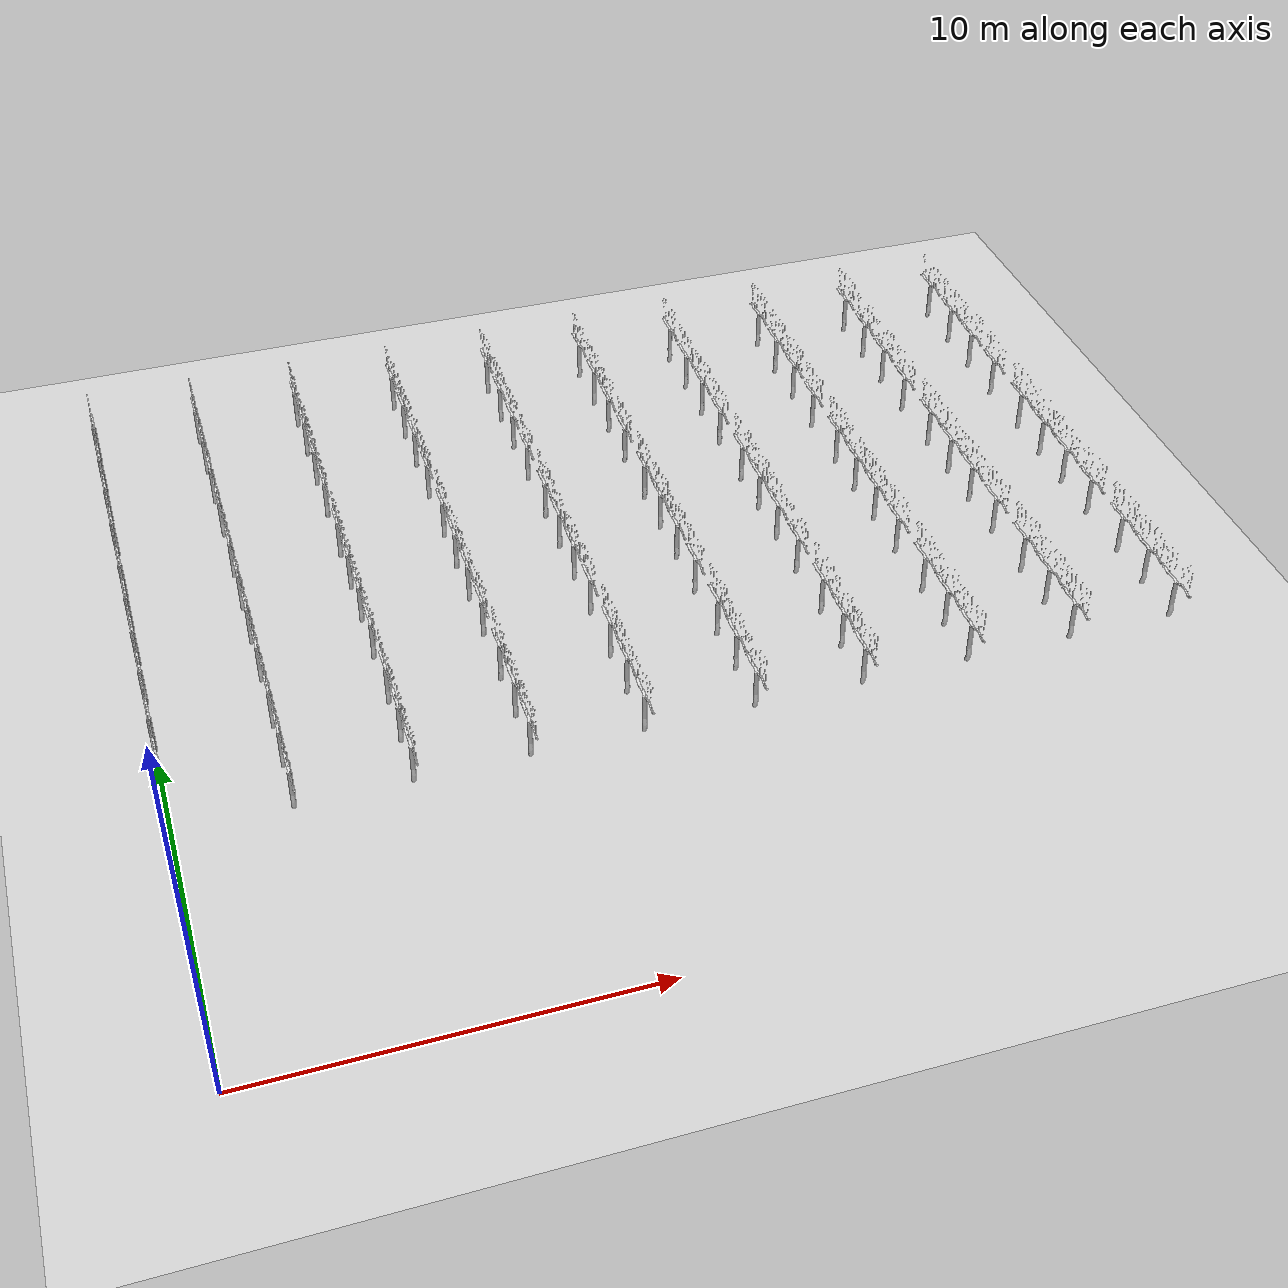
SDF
<sdf version="1.7">
 <world name="agropolis">
  <model name="ground_plane">
   <static>1</static>
   <link name="link">
    <collision name="collision">
     <geometry><plane><normal>0 0 1</normal><size>100 100</size></plane></geometry>
     <surface><friction><ode><mu>100</mu><mu2>50</mu2></ode></friction></surface>
    </collision>
    <visual name="visual">
     <cast_shadows>0</cast_shadows>
     <geometry><plane><normal>0 0 1</normal><size>100 100</size></plane></geometry>
     <material>
      <script><uri>file://media/materials/scripts/gazebo.material</uri><name>Gazebo/Grey</name></script>
     </material>
    </visual>
   </link>
  </model>
  <model name="vinya_22_fila_1">
   <static>1</static>
   <link name="link">
    <collision name="collision">
     <geometry><mesh><uri>file://models/vinya/meshes/vinya.dae</uri></mesh></geometry>
    </collision>
    <visual name="visual">
     <geometry><mesh><uri>file://models/vinya/meshes/vinya.dae</uri></mesh></geometry>
    </visual>
   </link>
   <pose>0.0 7.52059 0.03 0 -0 1.57</pose>
  </model>
  <model name="vinya_23_fila_1">
   <static>1</static>
   <link name="link">
    <collision name="collision">
     <geometry><mesh><uri>file://models/vinya/meshes/vinya.dae</uri></mesh></geometry>
    </collision>
    <visual name="visual">
     <geometry><mesh><uri>file://models/vinya/meshes/vinya.dae</uri></mesh></geometry>
    </visual>
   </link>
   <pose>0.0 8.93263 0.03 0 -0 1.57</pose>
  </model>
  <model name="vinya_24_fila_1">
   <static>1</static>
   <link name="link">
    <collision name="collision">
     <geometry><mesh><uri>file://models/vinya/meshes/vinya.dae</uri></mesh></geometry>
    </collision>
    <visual name="visual">
     <geometry><mesh><uri>file://models/vinya/meshes/vinya.dae</uri></mesh></geometry>
    </visual>
   </link>
   <pose>0.0 10.3418 0.03 0 -0 1.57</pose>
  </model>
  <model name="vinya_25_fila_1">
   <static>1</static>
   <link name="link">
    <collision name="collision">
     <geometry><mesh><uri>file://models/vinya/meshes/vinya.dae</uri></mesh></geometry>
    </collision>
    <visual name="visual">
     <geometry><mesh><uri>file://models/vinya/meshes/vinya.dae</uri></mesh></geometry>
    </visual>
   </link>
   <pose>0.0 12.1 0.03 0 -0 1.57</pose>
  </model>
  <model name="vinya_26_fila_1">
   <static>1</static>
   <link name="link">
    <collision name="collision">
     <geometry><mesh><uri>file://models/vinya/meshes/vinya.dae</uri></mesh></geometry>
    </collision>
    <visual name="visual">
     <geometry><mesh><uri>file://models/vinya/meshes/vinya.dae</uri></mesh></geometry>
    </visual>
   </link>
   <pose>0.0 13.6 0.03 0 -0 1.57</pose>
  </model>
  <model name="vinya_27_fila_1">
   <static>1</static>
   <link name="link">
    <collision name="collision">
     <geometry><mesh><uri>file://models/vinya/meshes/vinya.dae</uri></mesh></geometry>
    </collision>
    <visual name="visual">
     <geometry><mesh><uri>file://models/vinya/meshes/vinya.dae</uri></mesh></geometry>
    </visual>
   </link>
   <pose>0.0 15 0.03 0 -0 1.57</pose>
  </model>
  <model name="vinya_28_fila_1">
   <static>1</static>
   <link name="link">
    <collision name="collision">
     <geometry><mesh><uri>file://models/vinya/meshes/vinya.dae</uri></mesh></geometry>
    </collision>
    <visual name="visual">
     <geometry><mesh><uri>file://models/vinya/meshes/vinya.dae</uri></mesh></geometry>
    </visual>
   </link>
   <pose>0.0 16.404 0.03 0 -0 1.57</pose>
  </model>
  <model name="vinya_29_fila_1">
   <static>1</static>
   <link name="link">
    <collision name="collision">
     <geometry><mesh><uri>file://models/vinya/meshes/vinya.dae</uri></mesh></geometry>
    </collision>
    <visual name="visual">
     <geometry><mesh><uri>file://models/vinya/meshes/vinya.dae</uri></mesh></geometry>
    </visual>
   </link>
   <pose>0.0 18.2453 0.03 0 -0 1.57</pose>
  </model>
  <model name="vinya_30_fila_1">
   <static>1</static>
   <link name="link">
    <collision name="collision">
     <geometry><mesh><uri>file://models/vinya/meshes/vinya.dae</uri></mesh></geometry>
    </collision>
    <visual name="visual">
     <geometry><mesh><uri>file://models/vinya/meshes/vinya.dae</uri></mesh></geometry>
    </visual>
   </link>
   <pose>0.0 19.8052 0.03 0 -0 1.57</pose>
  </model>
  <model name="vinya_31_fila_1">
   <static>1</static>
   <link name="link">
    <collision name="collision">
     <geometry><mesh><uri>file://models/vinya/meshes/vinya.dae</uri></mesh></geometry>
    </collision>
    <visual name="visual">
     <geometry><mesh><uri>file://models/vinya/meshes/vinya.dae</uri></mesh></geometry>
    </visual>
   </link>
   <pose>0.0 21.2672 0.03 0 -0 1.57</pose>
  </model>
  <model name="vinya_32_fila_1">
   <static>1</static>
   <link name="link">
    <collision name="collision">
     <geometry><mesh><uri>file://models/vinya/meshes/vinya.dae</uri></mesh></geometry>
    </collision>
    <visual name="visual">
     <geometry><mesh><uri>file://models/vinya/meshes/vinya.dae</uri></mesh></geometry>
    </visual>
   </link>
   <pose>0.0 22.8 0.03 0 -0 1.57</pose>
  </model>
  <model name="vinya_22_fila_2">
   <static>1</static>
   <link name="link">
    <collision name="collision">
     <geometry><mesh><uri>file://models/vinya/meshes/vinya.dae</uri></mesh></geometry>
    </collision>
    <visual name="visual">
     <geometry><mesh><uri>file://models/vinya/meshes/vinya.dae</uri></mesh></geometry>
    </visual>
   </link>
   <pose>2.9 7.52059 0.03 0 -0 1.57</pose>
  </model>
  <model name="vinya_23_fila_2">
   <static>1</static>
   <link name="link">
    <collision name="collision">
     <geometry><mesh><uri>file://models/vinya/meshes/vinya.dae</uri></mesh></geometry>
    </collision>
    <visual name="visual">
     <geometry><mesh><uri>file://models/vinya/meshes/vinya.dae</uri></mesh></geometry>
    </visual>
   </link>
   <pose>2.9 8.93263 0.03 0 -0 1.57</pose>
  </model>
  <model name="vinya_24_fila_2">
   <static>1</static>
   <link name="link">
    <collision name="collision">
     <geometry><mesh><uri>file://models/vinya/meshes/vinya.dae</uri></mesh></geometry>
    </collision>
    <visual name="visual">
     <geometry><mesh><uri>file://models/vinya/meshes/vinya.dae</uri></mesh></geometry>
    </visual>
   </link>
   <pose>2.9 10.3418 0.03 0 -0 1.57</pose>
  </model>
  <model name="vinya_25_fila_2">
   <static>1</static>
   <link name="link">
    <collision name="collision">
     <geometry><mesh><uri>file://models/vinya/meshes/vinya.dae</uri></mesh></geometry>
    </collision>
    <visual name="visual">
     <geometry><mesh><uri>file://models/vinya/meshes/vinya.dae</uri></mesh></geometry>
    </visual>
   </link>
   <pose>2.9 12.1 0.03 0 -0 1.57</pose>
  </model>
  <model name="vinya_26_fila_2">
   <static>1</static>
   <link name="link">
    <collision name="collision">
     <geometry><mesh><uri>file://models/vinya/meshes/vinya.dae</uri></mesh></geometry>
    </collision>
    <visual name="visual">
     <geometry><mesh><uri>file://models/vinya/meshes/vinya.dae</uri></mesh></geometry>
    </visual>
   </link>
   <pose>2.9 13.6 0.03 0 -0 1.57</pose>
  </model>
  <model name="vinya_27_fila_2">
   <static>1</static>
   <link name="link">
    <collision name="collision">
     <geometry><mesh><uri>file://models/vinya/meshes/vinya.dae</uri></mesh></geometry>
    </collision>
    <visual name="visual">
     <geometry><mesh><uri>file://models/vinya/meshes/vinya.dae</uri></mesh></geometry>
    </visual>
   </link>
   <pose>2.9 15 0.03 0 -0 1.57</pose>
  </model>
  <model name="vinya_28_fila_2">
   <static>1</static>
   <link name="link">
    <collision name="collision">
     <geometry><mesh><uri>file://models/vinya/meshes/vinya.dae</uri></mesh></geometry>
    </collision>
    <visual name="visual">
     <geometry><mesh><uri>file://models/vinya/meshes/vinya.dae</uri></mesh></geometry>
    </visual>
   </link>
   <pose>2.9 16.404 0.03 0 -0 1.57</pose>
  </model>
  <model name="vinya_29_fila_2">
   <static>1</static>
   <link name="link">
    <collision name="collision">
     <geometry><mesh><uri>file://models/vinya/meshes/vinya.dae</uri></mesh></geometry>
    </collision>
    <visual name="visual">
     <geometry><mesh><uri>file://models/vinya/meshes/vinya.dae</uri></mesh></geometry>
    </visual>
   </link>
   <pose>2.9 18.2453 0.03 0 -0 1.57</pose>
  </model>
  <model name="vinya_30_fila_2">
   <static>1</static>
   <link name="link">
    <collision name="collision">
     <geometry><mesh><uri>file://models/vinya/meshes/vinya.dae</uri></mesh></geometry>
    </collision>
    <visual name="visual">
     <geometry><mesh><uri>file://models/vinya/meshes/vinya.dae</uri></mesh></geometry>
    </visual>
   </link>
   <pose>2.9 19.8052 0.03 0 -0 1.57</pose>
  </model>
  <model name="vinya_31_fila_2">
   <static>1</static>
   <link name="link">
    <collision name="collision">
     <geometry><mesh><uri>file://models/vinya/meshes/vinya.dae</uri></mesh></geometry>
    </collision>
    <visual name="visual">
     <geometry><mesh><uri>file://models/vinya/meshes/vinya.dae</uri></mesh></geometry>
    </visual>
   </link>
   <pose>2.9 21.2672 0.03 0 -0 1.57</pose>
  </model>
  <model name="vinya_32_fila_2">
   <static>1</static>
   <link name="link">
    <collision name="collision">
     <geometry><mesh><uri>file://models/vinya/meshes/vinya.dae</uri></mesh></geometry>
    </collision>
    <visual name="visual">
     <geometry><mesh><uri>file://models/vinya/meshes/vinya.dae</uri></mesh></geometry>
    </visual>
   </link>
   <pose>2.9 22.8 0.03 0 -0 1.57</pose>
  </model>
  <model name="vinya_22_fila_3">
   <static>1</static>
   <link name="link">
    <collision name="collision">
     <geometry><mesh><uri>file://models/vinya/meshes/vinya.dae</uri></mesh></geometry>
    </collision>
    <visual name="visual">
     <geometry><mesh><uri>file://models/vinya/meshes/vinya.dae</uri></mesh></geometry>
    </visual>
   </link>
   <pose>5.8 7.52059 0.03 0 -0 1.57</pose>
  </model>
  <model name="vinya_23_fila_3">
   <static>1</static>
   <link name="link">
    <collision name="collision">
     <geometry><mesh><uri>file://models/vinya/meshes/vinya.dae</uri></mesh></geometry>
    </collision>
    <visual name="visual">
     <geometry><mesh><uri>file://models/vinya/meshes/vinya.dae</uri></mesh></geometry>
    </visual>
   </link>
   <pose>5.8 8.93263 0.03 0 -0 1.57</pose>
  </model>
  <model name="vinya_24_fila_3">
   <static>1</static>
   <link name="link">
    <collision name="collision">
     <geometry><mesh><uri>file://models/vinya/meshes/vinya.dae</uri></mesh></geometry>
    </collision>
    <visual name="visual">
     <geometry><mesh><uri>file://models/vinya/meshes/vinya.dae</uri></mesh></geometry>
    </visual>
   </link>
   <pose>5.8 10.3418 0.03 0 -0 1.57</pose>
  </model>
  <model name="vinya_25_fila_3">
   <static>1</static>
   <link name="link">
    <collision name="collision">
     <geometry><mesh><uri>file://models/vinya/meshes/vinya.dae</uri></mesh></geometry>
    </collision>
    <visual name="visual">
     <geometry><mesh><uri>file://models/vinya/meshes/vinya.dae</uri></mesh></geometry>
    </visual>
   </link>
   <pose>5.8 12.1 0.03 0 -0 1.57</pose>
  </model>
  <model name="vinya_26_fila_3">
   <static>1</static>
   <link name="link">
    <collision name="collision">
     <geometry><mesh><uri>file://models/vinya/meshes/vinya.dae</uri></mesh></geometry>
    </collision>
    <visual name="visual">
     <geometry><mesh><uri>file://models/vinya/meshes/vinya.dae</uri></mesh></geometry>
    </visual>
   </link>
   <pose>5.8 13.6 0.03 0 -0 1.57</pose>
  </model>
  <model name="vinya_27_fila_3">
   <static>1</static>
   <link name="link">
    <collision name="collision">
     <geometry><mesh><uri>file://models/vinya/meshes/vinya.dae</uri></mesh></geometry>
    </collision>
    <visual name="visual">
     <geometry><mesh><uri>file://models/vinya/meshes/vinya.dae</uri></mesh></geometry>
    </visual>
   </link>
   <pose>5.8 15 0.03 0 -0 1.57</pose>
  </model>
  <model name="vinya_28_fila_3">
   <static>1</static>
   <link name="link">
    <collision name="collision">
     <geometry><mesh><uri>file://models/vinya/meshes/vinya.dae</uri></mesh></geometry>
    </collision>
    <visual name="visual">
     <geometry><mesh><uri>file://models/vinya/meshes/vinya.dae</uri></mesh></geometry>
    </visual>
   </link>
   <pose>5.8 16.404 0.03 0 -0 1.57</pose>
  </model>
  <model name="vinya_29_fila_3">
   <static>1</static>
   <link name="link">
    <collision name="collision">
     <geometry><mesh><uri>file://models/vinya/meshes/vinya.dae</uri></mesh></geometry>
    </collision>
    <visual name="visual">
     <geometry><mesh><uri>file://models/vinya/meshes/vinya.dae</uri></mesh></geometry>
    </visual>
   </link>
   <pose>5.8 18.2453 0.03 0 -0 1.57</pose>
  </model>
  <model name="vinya_30_fila_3">
   <static>1</static>
   <link name="link">
    <collision name="collision">
     <geometry><mesh><uri>file://models/vinya/meshes/vinya.dae</uri></mesh></geometry>
    </collision>
    <visual name="visual">
     <geometry><mesh><uri>file://models/vinya/meshes/vinya.dae</uri></mesh></geometry>
    </visual>
   </link>
   <pose>5.8 19.8052 0.03 0 -0 1.57</pose>
  </model>
  <model name="vinya_31_fila_3">
   <static>1</static>
   <link name="link">
    <collision name="collision">
     <geometry><mesh><uri>file://models/vinya/meshes/vinya.dae</uri></mesh></geometry>
    </collision>
    <visual name="visual">
     <geometry><mesh><uri>file://models/vinya/meshes/vinya.dae</uri></mesh></geometry>
    </visual>
   </link>
   <pose>5.8 21.2672 0.03 0 -0 1.57</pose>
  </model>
  <model name="vinya_32_fila_3">
   <static>1</static>
   <link name="link">
    <collision name="collision">
     <geometry><mesh><uri>file://models/vinya/meshes/vinya.dae</uri></mesh></geometry>
    </collision>
    <visual name="visual">
     <geometry><mesh><uri>file://models/vinya/meshes/vinya.dae</uri></mesh></geometry>
    </visual>
   </link>
   <pose>5.8 22.8 0.03 0 -0 1.57</pose>
  </model>
  <model name="vinya_22_fila_4">
   <static>1</static>
   <link name="link">
    <collision name="collision">
     <geometry><mesh><uri>file://models/vinya/meshes/vinya.dae</uri></mesh></geometry>
    </collision>
    <visual name="visual">
     <geometry><mesh><uri>file://models/vinya/meshes/vinya.dae</uri></mesh></geometry>
    </visual>
   </link>
   <pose>8.7 7.52059 0.03 0 -0 1.57</pose>
  </model>
  <model name="vinya_23_fila_4">
   <static>1</static>
   <link name="link">
    <collision name="collision">
     <geometry><mesh><uri>file://models/vinya/meshes/vinya.dae</uri></mesh></geometry>
    </collision>
    <visual name="visual">
     <geometry><mesh><uri>file://models/vinya/meshes/vinya.dae</uri></mesh></geometry>
    </visual>
   </link>
   <pose>8.7 8.93263 0.03 0 -0 1.57</pose>
  </model>
  <model name="vinya_24_fila_4">
   <static>1</static>
   <link name="link">
    <collision name="collision">
     <geometry><mesh><uri>file://models/vinya/meshes/vinya.dae</uri></mesh></geometry>
    </collision>
    <visual name="visual">
     <geometry><mesh><uri>file://models/vinya/meshes/vinya.dae</uri></mesh></geometry>
    </visual>
   </link>
   <pose>8.7 10.3418 0.03 0 -0 1.57</pose>
  </model>
  <model name="vinya_25_fila_4">
   <static>1</static>
   <link name="link">
    <collision name="collision">
     <geometry><mesh><uri>file://models/vinya/meshes/vinya.dae</uri></mesh></geometry>
    </collision>
    <visual name="visual">
     <geometry><mesh><uri>file://models/vinya/meshes/vinya.dae</uri></mesh></geometry>
    </visual>
   </link>
   <pose>8.7 12.1 0.03 0 -0 1.57</pose>
  </model>
  <model name="vinya_26_fila_4">
   <static>1</static>
   <link name="link">
    <collision name="collision">
     <geometry><mesh><uri>file://models/vinya/meshes/vinya.dae</uri></mesh></geometry>
    </collision>
    <visual name="visual">
     <geometry><mesh><uri>file://models/vinya/meshes/vinya.dae</uri></mesh></geometry>
    </visual>
   </link>
   <pose>8.7 13.6 0.03 0 -0 1.57</pose>
  </model>
  <model name="vinya_27_fila_4">
   <static>1</static>
   <link name="link">
    <collision name="collision">
     <geometry><mesh><uri>file://models/vinya/meshes/vinya.dae</uri></mesh></geometry>
    </collision>
    <visual name="visual">
     <geometry><mesh><uri>file://models/vinya/meshes/vinya.dae</uri></mesh></geometry>
    </visual>
   </link>
   <pose>8.7 15 0.03 0 -0 1.57</pose>
  </model>
  <model name="vinya_28_fila_4">
   <static>1</static>
   <link name="link">
    <collision name="collision">
     <geometry><mesh><uri>file://models/vinya/meshes/vinya.dae</uri></mesh></geometry>
    </collision>
    <visual name="visual">
     <geometry><mesh><uri>file://models/vinya/meshes/vinya.dae</uri></mesh></geometry>
    </visual>
   </link>
   <pose>8.7 16.404 0.03 0 -0 1.57</pose>
  </model>
  <model name="vinya_29_fila_4">
   <static>1</static>
   <link name="link">
    <collision name="collision">
     <geometry><mesh><uri>file://models/vinya/meshes/vinya.dae</uri></mesh></geometry>
    </collision>
    <visual name="visual">
     <geometry><mesh><uri>file://models/vinya/meshes/vinya.dae</uri></mesh></geometry>
    </visual>
   </link>
   <pose>8.7 18.2453 0.03 0 -0 1.57</pose>
  </model>
  <model name="vinya_30_fila_4">
   <static>1</static>
   <link name="link">
    <collision name="collision">
     <geometry><mesh><uri>file://models/vinya/meshes/vinya.dae</uri></mesh></geometry>
    </collision>
    <visual name="visual">
     <geometry><mesh><uri>file://models/vinya/meshes/vinya.dae</uri></mesh></geometry>
    </visual>
   </link>
   <pose>8.7 19.8052 0.03 0 -0 1.57</pose>
  </model>
  <model name="vinya_31_fila_4">
   <static>1</static>
   <link name="link">
    <collision name="collision">
     <geometry><mesh><uri>file://models/vinya/meshes/vinya.dae</uri></mesh></geometry>
    </collision>
    <visual name="visual">
     <geometry><mesh><uri>file://models/vinya/meshes/vinya.dae</uri></mesh></geometry>
    </visual>
   </link>
   <pose>8.7 21.2672 0.03 0 -0 1.57</pose>
  </model>
  <model name="vinya_32_fila_4">
   <static>1</static>
   <link name="link">
    <collision name="collision">
     <geometry><mesh><uri>file://models/vinya/meshes/vinya.dae</uri></mesh></geometry>
    </collision>
    <visual name="visual">
     <geometry><mesh><uri>file://models/vinya/meshes/vinya.dae</uri></mesh></geometry>
    </visual>
   </link>
   <pose>8.7 22.8 0.03 0 -0 1.57</pose>
  </model>
  <model name="vinya_22_fila_5">
   <static>1</static>
   <link name="link">
    <collision name="collision">
     <geometry><mesh><uri>file://models/vinya/meshes/vinya.dae</uri></mesh></geometry>
    </collision>
    <visual name="visual">
     <geometry><mesh><uri>file://models/vinya/meshes/vinya.dae</uri></mesh></geometry>
    </visual>
   </link>
   <pose>11.6 7.52059 0.03 0 -0 1.57</pose>
  </model>
  <model name="vinya_23_fila_5">
   <static>1</static>
   <link name="link">
    <collision name="collision">
     <geometry><mesh><uri>file://models/vinya/meshes/vinya.dae</uri></mesh></geometry>
    </collision>
    <visual name="visual">
     <geometry><mesh><uri>file://models/vinya/meshes/vinya.dae</uri></mesh></geometry>
    </visual>
   </link>
   <pose>11.6 8.93263 0.03 0 -0 1.57</pose>
  </model>
  <model name="vinya_24_fila_5">
   <static>1</static>
   <link name="link">
    <collision name="collision">
     <geometry><mesh><uri>file://models/vinya/meshes/vinya.dae</uri></mesh></geometry>
    </collision>
    <visual name="visual">
     <geometry><mesh><uri>file://models/vinya/meshes/vinya.dae</uri></mesh></geometry>
    </visual>
   </link>
   <pose>11.6 10.3418 0.03 0 -0 1.57</pose>
  </model>
  <model name="vinya_25_fila_5">
   <static>1</static>
   <link name="link">
    <collision name="collision">
     <geometry><mesh><uri>file://models/vinya/meshes/vinya.dae</uri></mesh></geometry>
    </collision>
    <visual name="visual">
     <geometry><mesh><uri>file://models/vinya/meshes/vinya.dae</uri></mesh></geometry>
    </visual>
   </link>
   <pose>11.6 12.1 0.03 0 -0 1.57</pose>
  </model>
  <model name="vinya_26_fila_5">
   <static>1</static>
   <link name="link">
    <collision name="collision">
     <geometry><mesh><uri>file://models/vinya/meshes/vinya.dae</uri></mesh></geometry>
    </collision>
    <visual name="visual">
     <geometry><mesh><uri>file://models/vinya/meshes/vinya.dae</uri></mesh></geometry>
    </visual>
   </link>
   <pose>11.6 13.6 0.03 0 -0 1.57</pose>
  </model>
  <model name="vinya_27_fila_5">
   <static>1</static>
   <link name="link">
    <collision name="collision">
     <geometry><mesh><uri>file://models/vinya/meshes/vinya.dae</uri></mesh></geometry>
    </collision>
    <visual name="visual">
     <geometry><mesh><uri>file://models/vinya/meshes/vinya.dae</uri></mesh></geometry>
    </visual>
   </link>
   <pose>11.6 15 0.03 0 -0 1.57</pose>
  </model>
  <model name="vinya_28_fila_5">
   <static>1</static>
   <link name="link">
    <collision name="collision">
     <geometry><mesh><uri>file://models/vinya/meshes/vinya.dae</uri></mesh></geometry>
    </collision>
    <visual name="visual">
     <geometry><mesh><uri>file://models/vinya/meshes/vinya.dae</uri></mesh></geometry>
    </visual>
   </link>
   <pose>11.6 16.404 0.03 0 -0 1.57</pose>
  </model>
  <model name="vinya_29_fila_5">
   <static>1</static>
   <link name="link">
    <collision name="collision">
     <geometry><mesh><uri>file://models/vinya/meshes/vinya.dae</uri></mesh></geometry>
    </collision>
    <visual name="visual">
     <geometry><mesh><uri>file://models/vinya/meshes/vinya.dae</uri></mesh></geometry>
    </visual>
   </link>
   <pose>11.6 18.2453 0.03 0 -0 1.57</pose>
  </model>
  <model name="vinya_30_fila_5">
   <static>1</static>
   <link name="link">
    <collision name="collision">
     <geometry><mesh><uri>file://models/vinya/meshes/vinya.dae</uri></mesh></geometry>
    </collision>
    <visual name="visual">
     <geometry><mesh><uri>file://models/vinya/meshes/vinya.dae</uri></mesh></geometry>
    </visual>
   </link>
   <pose>11.6 19.8052 0.03 0 -0 1.57</pose>
  </model>
  <model name="vinya_31_fila_5">
   <static>1</static>
   <link name="link">
    <collision name="collision">
     <geometry><mesh><uri>file://models/vinya/meshes/vinya.dae</uri></mesh></geometry>
    </collision>
    <visual name="visual">
     <geometry><mesh><uri>file://models/vinya/meshes/vinya.dae</uri></mesh></geometry>
    </visual>
   </link>
   <pose>11.6 21.2672 0.03 0 -0 1.57</pose>
  </model>
  <model name="vinya_32_fila_5">
   <static>1</static>
   <link name="link">
    <collision name="collision">
     <geometry><mesh><uri>file://models/vinya/meshes/vinya.dae</uri></mesh></geometry>
    </collision>
    <visual name="visual">
     <geometry><mesh><uri>file://models/vinya/meshes/vinya.dae</uri></mesh></geometry>
    </visual>
   </link>
   <pose>11.6 22.8 0.03 0 -0 1.57</pose>
  </model>
  <model name="vinya_22_fila_6">
   <static>1</static>
   <link name="link">
    <collision name="collision">
     <geometry><mesh><uri>file://models/vinya/meshes/vinya.dae</uri></mesh></geometry>
    </collision>
    <visual name="visual">
     <geometry><mesh><uri>file://models/vinya/meshes/vinya.dae</uri></mesh></geometry>
    </visual>
   </link>
   <pose>14.5 7.52059 0.03 0 -0 1.57</pose>
  </model>
  <model name="vinya_23_fila_6">
   <static>1</static>
   <link name="link">
    <collision name="collision">
     <geometry><mesh><uri>file://models/vinya/meshes/vinya.dae</uri></mesh></geometry>
    </collision>
    <visual name="visual">
     <geometry><mesh><uri>file://models/vinya/meshes/vinya.dae</uri></mesh></geometry>
    </visual>
   </link>
   <pose>14.5 8.93263 0.03 0 -0 1.57</pose>
  </model>
  <model name="vinya_24_fila_6">
   <static>1</static>
   <link name="link">
    <collision name="collision">
     <geometry><mesh><uri>file://models/vinya/meshes/vinya.dae</uri></mesh></geometry>
    </collision>
    <visual name="visual">
     <geometry><mesh><uri>file://models/vinya/meshes/vinya.dae</uri></mesh></geometry>
    </visual>
   </link>
   <pose>14.5 10.3418 0.03 0 -0 1.57</pose>
  </model>
  <model name="vinya_25_fila_6">
   <static>1</static>
   <link name="link">
    <collision name="collision">
     <geometry><mesh><uri>file://models/vinya/meshes/vinya.dae</uri></mesh></geometry>
    </collision>
    <visual name="visual">
     <geometry><mesh><uri>file://models/vinya/meshes/vinya.dae</uri></mesh></geometry>
    </visual>
   </link>
   <pose>14.5 12.1 0.03 0 -0 1.57</pose>
  </model>
  <model name="vinya_26_fila_6">
   <static>1</static>
   <link name="link">
    <collision name="collision">
     <geometry><mesh><uri>file://models/vinya/meshes/vinya.dae</uri></mesh></geometry>
    </collision>
    <visual name="visual">
     <geometry><mesh><uri>file://models/vinya/meshes/vinya.dae</uri></mesh></geometry>
    </visual>
   </link>
   <pose>14.5 13.6 0.03 0 -0 1.57</pose>
  </model>
  <model name="vinya_27_fila_6">
   <static>1</static>
   <link name="link">
    <collision name="collision">
     <geometry><mesh><uri>file://models/vinya/meshes/vinya.dae</uri></mesh></geometry>
    </collision>
    <visual name="visual">
     <geometry><mesh><uri>file://models/vinya/meshes/vinya.dae</uri></mesh></geometry>
    </visual>
   </link>
   <pose>14.5 15 0.03 0 -0 1.57</pose>
  </model>
  <model name="vinya_28_fila_6">
   <static>1</static>
   <link name="link">
    <collision name="collision">
     <geometry><mesh><uri>file://models/vinya/meshes/vinya.dae</uri></mesh></geometry>
    </collision>
    <visual name="visual">
     <geometry><mesh><uri>file://models/vinya/meshes/vinya.dae</uri></mesh></geometry>
    </visual>
   </link>
   <pose>14.5 16.404 0.03 0 -0 1.57</pose>
  </model>
  <model name="vinya_29_fila_6">
   <static>1</static>
   <link name="link">
    <collision name="collision">
     <geometry><mesh><uri>file://models/vinya/meshes/vinya.dae</uri></mesh></geometry>
    </collision>
    <visual name="visual">
     <geometry><mesh><uri>file://models/vinya/meshes/vinya.dae</uri></mesh></geometry>
    </visual>
   </link>
   <pose>14.5 18.2453 0.03 0 -0 1.57</pose>
  </model>
  <model name="vinya_30_fila_6">
   <static>1</static>
   <link name="link">
    <collision name="collision">
     <geometry><mesh><uri>file://models/vinya/meshes/vinya.dae</uri></mesh></geometry>
    </collision>
    <visual name="visual">
     <geometry><mesh><uri>file://models/vinya/meshes/vinya.dae</uri></mesh></geometry>
    </visual>
   </link>
   <pose>14.5 19.8052 0.03 0 -0 1.57</pose>
  </model>
  <model name="vinya_31_fila_6">
   <static>1</static>
   <link name="link">
    <collision name="collision">
     <geometry><mesh><uri>file://models/vinya/meshes/vinya.dae</uri></mesh></geometry>
    </collision>
    <visual name="visual">
     <geometry><mesh><uri>file://models/vinya/meshes/vinya.dae</uri></mesh></geometry>
    </visual>
   </link>
   <pose>14.5 21.2672 0.03 0 -0 1.57</pose>
  </model>
  <model name="vinya_32_fila_6">
   <static>1</static>
   <link name="link">
    <collision name="collision">
     <geometry><mesh><uri>file://models/vinya/meshes/vinya.dae</uri></mesh></geometry>
    </collision>
    <visual name="visual">
     <geometry><mesh><uri>file://models/vinya/meshes/vinya.dae</uri></mesh></geometry>
    </visual>
   </link>
   <pose>14.5 22.8 0.03 0 -0 1.57</pose>
  </model>
  <model name="vinya_22_fila_7">
   <static>1</static>
   <link name="link">
    <collision name="collision">
     <geometry><mesh><uri>file://models/vinya/meshes/vinya.dae</uri></mesh></geometry>
    </collision>
    <visual name="visual">
     <geometry><mesh><uri>file://models/vinya/meshes/vinya.dae</uri></mesh></geometry>
    </visual>
   </link>
   <pose>17.4 7.52059 0.03 0 -0 1.57</pose>
  </model>
  <model name="vinya_23_fila_7">
   <static>1</static>
   <link name="link">
    <collision name="collision">
     <geometry><mesh><uri>file://models/vinya/meshes/vinya.dae</uri></mesh></geometry>
    </collision>
    <visual name="visual">
     <geometry><mesh><uri>file://models/vinya/meshes/vinya.dae</uri></mesh></geometry>
    </visual>
   </link>
   <pose>17.4 8.93263 0.03 0 -0 1.57</pose>
  </model>
  <model name="vinya_24_fila_7">
   <static>1</static>
   <link name="link">
    <collision name="collision">
     <geometry><mesh><uri>file://models/vinya/meshes/vinya.dae</uri></mesh></geometry>
    </collision>
    <visual name="visual">
     <geometry><mesh><uri>file://models/vinya/meshes/vinya.dae</uri></mesh></geometry>
    </visual>
   </link>
   <pose>17.4 10.3418 0.03 0 -0 1.57</pose>
  </model>
  <model name="vinya_25_fila_7">
   <static>1</static>
   <link name="link">
    <collision name="collision">
     <geometry><mesh><uri>file://models/vinya/meshes/vinya.dae</uri></mesh></geometry>
    </collision>
    <visual name="visual">
     <geometry><mesh><uri>file://models/vinya/meshes/vinya.dae</uri></mesh></geometry>
    </visual>
   </link>
   <pose>17.4 12.1 0.03 0 -0 1.57</pose>
  </model>
  <model name="vinya_26_fila_7">
   <static>1</static>
   <link name="link">
    <collision name="collision">
     <geometry><mesh><uri>file://models/vinya/meshes/vinya.dae</uri></mesh></geometry>
    </collision>
    <visual name="visual">
     <geometry><mesh><uri>file://models/vinya/meshes/vinya.dae</uri></mesh></geometry>
    </visual>
   </link>
   <pose>17.4 13.6 0.03 0 -0 1.57</pose>
  </model>
  <model name="vinya_27_fila_7">
   <static>1</static>
   <link name="link">
    <collision name="collision">
     <geometry><mesh><uri>file://models/vinya/meshes/vinya.dae</uri></mesh></geometry>
    </collision>
    <visual name="visual">
     <geometry><mesh><uri>file://models/vinya/meshes/vinya.dae</uri></mesh></geometry>
    </visual>
   </link>
   <pose>17.4 15 0.03 0 -0 1.57</pose>
  </model>
  <model name="vinya_28_fila_7">
   <static>1</static>
   <link name="link">
    <collision name="collision">
     <geometry><mesh><uri>file://models/vinya/meshes/vinya.dae</uri></mesh></geometry>
    </collision>
    <visual name="visual">
     <geometry><mesh><uri>file://models/vinya/meshes/vinya.dae</uri></mesh></geometry>
    </visual>
   </link>
   <pose>17.4 16.404 0.03 0 -0 1.57</pose>
  </model>
  <model name="vinya_29_fila_7">
   <static>1</static>
   <link name="link">
    <collision name="collision">
     <geometry><mesh><uri>file://models/vinya/meshes/vinya.dae</uri></mesh></geometry>
    </collision>
    <visual name="visual">
     <geometry><mesh><uri>file://models/vinya/meshes/vinya.dae</uri></mesh></geometry>
    </visual>
   </link>
   <pose>17.4 18.2453 0.03 0 -0 1.57</pose>
  </model>
  <model name="vinya_30_fila_7">
   <static>1</static>
   <link name="link">
    <collision name="collision">
     <geometry><mesh><uri>file://models/vinya/meshes/vinya.dae</uri></mesh></geometry>
    </collision>
    <visual name="visual">
     <geometry><mesh><uri>file://models/vinya/meshes/vinya.dae</uri></mesh></geometry>
    </visual>
   </link>
   <pose>17.4 19.8052 0.03 0 -0 1.57</pose>
  </model>
  <model name="vinya_31_fila_7">
   <static>1</static>
   <link name="link">
    <collision name="collision">
     <geometry><mesh><uri>file://models/vinya/meshes/vinya.dae</uri></mesh></geometry>
    </collision>
    <visual name="visual">
     <geometry><mesh><uri>file://models/vinya/meshes/vinya.dae</uri></mesh></geometry>
    </visual>
   </link>
   <pose>17.4 21.2672 0.03 0 -0 1.57</pose>
  </model>
  <model name="vinya_32_fila_7">
   <static>1</static>
   <link name="link">
    <collision name="collision">
     <geometry><mesh><uri>file://models/vinya/meshes/vinya.dae</uri></mesh></geometry>
    </collision>
    <visual name="visual">
     <geometry><mesh><uri>file://models/vinya/meshes/vinya.dae</uri></mesh></geometry>
    </visual>
   </link>
   <pose>17.4 22.8 0.03 0 -0 1.57</pose>
  </model>
  <model name="vinya_22_fila_8">
   <static>1</static>
   <link name="link">
    <collision name="collision">
     <geometry><mesh><uri>file://models/vinya/meshes/vinya.dae</uri></mesh></geometry>
    </collision>
    <visual name="visual">
     <geometry><mesh><uri>file://models/vinya/meshes/vinya.dae</uri></mesh></geometry>
    </visual>
   </link>
   <pose>20.3 7.52059 0.03 0 -0 1.57</pose>
  </model>
  <model name="vinya_23_fila_8">
   <static>1</static>
   <link name="link">
    <collision name="collision">
     <geometry><mesh><uri>file://models/vinya/meshes/vinya.dae</uri></mesh></geometry>
    </collision>
    <visual name="visual">
     <geometry><mesh><uri>file://models/vinya/meshes/vinya.dae</uri></mesh></geometry>
    </visual>
   </link>
   <pose>20.3 8.93263 0.03 0 -0 1.57</pose>
  </model>
  <model name="vinya_24_fila_8">
   <static>1</static>
   <link name="link">
    <collision name="collision">
     <geometry><mesh><uri>file://models/vinya/meshes/vinya.dae</uri></mesh></geometry>
    </collision>
    <visual name="visual">
     <geometry><mesh><uri>file://models/vinya/meshes/vinya.dae</uri></mesh></geometry>
    </visual>
   </link>
   <pose>20.3 10.3418 0.03 0 -0 1.57</pose>
  </model>
  <model name="vinya_25_fila_8">
   <static>1</static>
   <link name="link">
    <collision name="collision">
     <geometry><mesh><uri>file://models/vinya/meshes/vinya.dae</uri></mesh></geometry>
    </collision>
    <visual name="visual">
     <geometry><mesh><uri>file://models/vinya/meshes/vinya.dae</uri></mesh></geometry>
    </visual>
   </link>
   <pose>20.3 12.1 0.03 0 -0 1.57</pose>
  </model>
  <model name="vinya_26_fila_8">
   <static>1</static>
   <link name="link">
    <collision name="collision">
     <geometry><mesh><uri>file://models/vinya/meshes/vinya.dae</uri></mesh></geometry>
    </collision>
    <visual name="visual">
     <geometry><mesh><uri>file://models/vinya/meshes/vinya.dae</uri></mesh></geometry>
    </visual>
   </link>
   <pose>20.3 13.6 0.03 0 -0 1.57</pose>
  </model>
  <model name="vinya_27_fila_8">
   <static>1</static>
   <link name="link">
    <collision name="collision">
     <geometry><mesh><uri>file://models/vinya/meshes/vinya.dae</uri></mesh></geometry>
    </collision>
    <visual name="visual">
     <geometry><mesh><uri>file://models/vinya/meshes/vinya.dae</uri></mesh></geometry>
    </visual>
   </link>
   <pose>20.3 15 0.03 0 -0 1.57</pose>
  </model>
  <model name="vinya_28_fila_8">
   <static>1</static>
   <link name="link">
    <collision name="collision">
     <geometry><mesh><uri>file://models/vinya/meshes/vinya.dae</uri></mesh></geometry>
    </collision>
    <visual name="visual">
     <geometry><mesh><uri>file://models/vinya/meshes/vinya.dae</uri></mesh></geometry>
    </visual>
   </link>
   <pose>20.3 16.404 0.03 0 -0 1.57</pose>
  </model>
  <model name="vinya_29_fila_8">
   <static>1</static>
   <link name="link">
    <collision name="collision">
     <geometry><mesh><uri>file://models/vinya/meshes/vinya.dae</uri></mesh></geometry>
    </collision>
    <visual name="visual">
     <geometry><mesh><uri>file://models/vinya/meshes/vinya.dae</uri></mesh></geometry>
    </visual>
   </link>
   <pose>20.3 18.2453 0.03 0 -0 1.57</pose>
  </model>
  <model name="vinya_30_fila_8">
   <static>1</static>
   <link name="link">
    <collision name="collision">
     <geometry><mesh><uri>file://models/vinya/meshes/vinya.dae</uri></mesh></geometry>
    </collision>
    <visual name="visual">
     <geometry><mesh><uri>file://models/vinya/meshes/vinya.dae</uri></mesh></geometry>
    </visual>
   </link>
   <pose>20.3 19.8052 0.03 0 -0 1.57</pose>
  </model>
  <model name="vinya_31_fila_8">
   <static>1</static>
   <link name="link">
    <collision name="collision">
     <geometry><mesh><uri>file://models/vinya/meshes/vinya.dae</uri></mesh></geometry>
    </collision>
    <visual name="visual">
     <geometry><mesh><uri>file://models/vinya/meshes/vinya.dae</uri></mesh></geometry>
    </visual>
   </link>
   <pose>20.3 21.2672 0.03 0 -0 1.57</pose>
  </model>
  <model name="vinya_32_fila_8">
   <static>1</static>
   <link name="link">
    <collision name="collision">
     <geometry><mesh><uri>file://models/vinya/meshes/vinya.dae</uri></mesh></geometry>
    </collision>
    <visual name="visual">
     <geometry><mesh><uri>file://models/vinya/meshes/vinya.dae</uri></mesh></geometry>
    </visual>
   </link>
   <pose>20.3 22.8 0.03 0 -0 1.57</pose>
  </model>
  <model name="vinya_22_fila_9">
   <static>1</static>
   <link name="link">
    <collision name="collision">
     <geometry><mesh><uri>file://models/vinya/meshes/vinya.dae</uri></mesh></geometry>
    </collision>
    <visual name="visual">
     <geometry><mesh><uri>file://models/vinya/meshes/vinya.dae</uri></mesh></geometry>
    </visual>
   </link>
   <pose>23.2 7.52059 0.03 0 -0 1.57</pose>
  </model>
  <model name="vinya_23_fila_9">
   <static>1</static>
   <link name="link">
    <collision name="collision">
     <geometry><mesh><uri>file://models/vinya/meshes/vinya.dae</uri></mesh></geometry>
    </collision>
    <visual name="visual">
     <geometry><mesh><uri>file://models/vinya/meshes/vinya.dae</uri></mesh></geometry>
    </visual>
   </link>
   <pose>23.2 8.93263 0.03 0 -0 1.57</pose>
  </model>
  <model name="vinya_24_fila_9">
   <static>1</static>
   <link name="link">
    <collision name="collision">
     <geometry><mesh><uri>file://models/vinya/meshes/vinya.dae</uri></mesh></geometry>
    </collision>
    <visual name="visual">
     <geometry><mesh><uri>file://models/vinya/meshes/vinya.dae</uri></mesh></geometry>
    </visual>
   </link>
   <pose>23.2 10.3418 0.03 0 -0 1.57</pose>
  </model>
  <model name="vinya_25_fila_9">
   <static>1</static>
   <link name="link">
    <collision name="collision">
     <geometry><mesh><uri>file://models/vinya/meshes/vinya.dae</uri></mesh></geometry>
    </collision>
    <visual name="visual">
     <geometry><mesh><uri>file://models/vinya/meshes/vinya.dae</uri></mesh></geometry>
    </visual>
   </link>
   <pose>23.2 12.1 0.03 0 -0 1.57</pose>
  </model>
  <model name="vinya_26_fila_9">
   <static>1</static>
   <link name="link">
    <collision name="collision">
     <geometry><mesh><uri>file://models/vinya/meshes/vinya.dae</uri></mesh></geometry>
    </collision>
    <visual name="visual">
     <geometry><mesh><uri>file://models/vinya/meshes/vinya.dae</uri></mesh></geometry>
    </visual>
   </link>
   <pose>23.2 13.6 0.03 0 -0 1.57</pose>
  </model>
  <model name="vinya_27_fila_9">
   <static>1</static>
   <link name="link">
    <collision name="collision">
     <geometry><mesh><uri>file://models/vinya/meshes/vinya.dae</uri></mesh></geometry>
    </collision>
    <visual name="visual">
     <geometry><mesh><uri>file://models/vinya/meshes/vinya.dae</uri></mesh></geometry>
    </visual>
   </link>
   <pose>23.2 15 0.03 0 -0 1.57</pose>
  </model>
  <model name="vinya_28_fila_9">
   <static>1</static>
   <link name="link">
    <collision name="collision">
     <geometry><mesh><uri>file://models/vinya/meshes/vinya.dae</uri></mesh></geometry>
    </collision>
    <visual name="visual">
     <geometry><mesh><uri>file://models/vinya/meshes/vinya.dae</uri></mesh></geometry>
    </visual>
   </link>
   <pose>23.2 16.404 0.03 0 -0 1.57</pose>
  </model>
  <model name="vinya_29_fila_9">
   <static>1</static>
   <link name="link">
    <collision name="collision">
     <geometry><mesh><uri>file://models/vinya/meshes/vinya.dae</uri></mesh></geometry>
    </collision>
    <visual name="visual">
     <geometry><mesh><uri>file://models/vinya/meshes/vinya.dae</uri></mesh></geometry>
    </visual>
   </link>
   <pose>23.2 18.2453 0.03 0 -0 1.57</pose>
  </model>
  <model name="vinya_30_fila_9">
   <static>1</static>
   <link name="link">
    <collision name="collision">
     <geometry><mesh><uri>file://models/vinya/meshes/vinya.dae</uri></mesh></geometry>
    </collision>
    <visual name="visual">
     <geometry><mesh><uri>file://models/vinya/meshes/vinya.dae</uri></mesh></geometry>
    </visual>
   </link>
   <pose>23.2 19.8052 0.03 0 -0 1.57</pose>
  </model>
  <model name="vinya_31_fila_9">
   <static>1</static>
   <link name="link">
    <collision name="collision">
     <geometry><mesh><uri>file://models/vinya/meshes/vinya.dae</uri></mesh></geometry>
    </collision>
    <visual name="visual">
     <geometry><mesh><uri>file://models/vinya/meshes/vinya.dae</uri></mesh></geometry>
    </visual>
   </link>
   <pose>23.2 21.2672 0.03 0 -0 1.57</pose>
  </model>
  <model name="vinya_32_fila_9">
   <static>1</static>
   <link name="link">
    <collision name="collision">
     <geometry><mesh><uri>file://models/vinya/meshes/vinya.dae</uri></mesh></geometry>
    </collision>
    <visual name="visual">
     <geometry><mesh><uri>file://models/vinya/meshes/vinya.dae</uri></mesh></geometry>
    </visual>
   </link>
   <pose>23.2 22.8 0.03 0 -0 1.57</pose>
  </model>
  <model name="vinya_22_fila_10">
   <static>1</static>
   <link name="link">
    <collision name="collision">
     <geometry><mesh><uri>file://models/vinya/meshes/vinya.dae</uri></mesh></geometry>
    </collision>
    <visual name="visual">
     <geometry><mesh><uri>file://models/vinya/meshes/vinya.dae</uri></mesh></geometry>
    </visual>
   </link>
   <pose>26.099999999999998 7.52059 0.03 0 -0 1.57</pose>
  </model>
  <model name="vinya_23_fila_10">
   <static>1</static>
   <link name="link">
    <collision name="collision">
     <geometry><mesh><uri>file://models/vinya/meshes/vinya.dae</uri></mesh></geometry>
    </collision>
    <visual name="visual">
     <geometry><mesh><uri>file://models/vinya/meshes/vinya.dae</uri></mesh></geometry>
    </visual>
   </link>
   <pose>26.099999999999998 8.93263 0.03 0 -0 1.57</pose>
  </model>
  <model name="vinya_24_fila_10">
   <static>1</static>
   <link name="link">
    <collision name="collision">
     <geometry><mesh><uri>file://models/vinya/meshes/vinya.dae</uri></mesh></geometry>
    </collision>
    <visual name="visual">
     <geometry><mesh><uri>file://models/vinya/meshes/vinya.dae</uri></mesh></geometry>
    </visual>
   </link>
   <pose>26.099999999999998 10.3418 0.03 0 -0 1.57</pose>
  </model>
  <model name="vinya_25_fila_10">
   <static>1</static>
   <link name="link">
    <collision name="collision">
     <geometry><mesh><uri>file://models/vinya/meshes/vinya.dae</uri></mesh></geometry>
    </collision>
    <visual name="visual">
     <geometry><mesh><uri>file://models/vinya/meshes/vinya.dae</uri></mesh></geometry>
    </visual>
   </link>
   <pose>26.099999999999998 12.1 0.03 0 -0 1.57</pose>
  </model>
  <model name="vinya_26_fila_10">
   <static>1</static>
   <link name="link">
    <collision name="collision">
     <geometry><mesh><uri>file://models/vinya/meshes/vinya.dae</uri></mesh></geometry>
    </collision>
    <visual name="visual">
     <geometry><mesh><uri>file://models/vinya/meshes/vinya.dae</uri></mesh></geometry>
    </visual>
   </link>
   <pose>26.099999999999998 13.6 0.03 0 -0 1.57</pose>
  </model>
  <model name="vinya_27_fila_10">
   <static>1</static>
   <link name="link">
    <collision name="collision">
     <geometry><mesh><uri>file://models/vinya/meshes/vinya.dae</uri></mesh></geometry>
    </collision>
    <visual name="visual">
     <geometry><mesh><uri>file://models/vinya/meshes/vinya.dae</uri></mesh></geometry>
    </visual>
   </link>
   <pose>26.099999999999998 15 0.03 0 -0 1.57</pose>
  </model>
  <model name="vinya_28_fila_10">
   <static>1</static>
   <link name="link">
    <collision name="collision">
     <geometry><mesh><uri>file://models/vinya/meshes/vinya.dae</uri></mesh></geometry>
    </collision>
    <visual name="visual">
     <geometry><mesh><uri>file://models/vinya/meshes/vinya.dae</uri></mesh></geometry>
    </visual>
   </link>
   <pose>26.099999999999998 16.404 0.03 0 -0 1.57</pose>
  </model>
  <model name="vinya_29_fila_10">
   <static>1</static>
   <link name="link">
    <collision name="collision">
     <geometry><mesh><uri>file://models/vinya/meshes/vinya.dae</uri></mesh></geometry>
    </collision>
    <visual name="visual">
     <geometry><mesh><uri>file://models/vinya/meshes/vinya.dae</uri></mesh></geometry>
    </visual>
   </link>
   <pose>26.099999999999998 18.2453 0.03 0 -0 1.57</pose>
  </model>
  <model name="vinya_30_fila_10">
   <static>1</static>
   <link name="link">
    <collision name="collision">
     <geometry><mesh><uri>file://models/vinya/meshes/vinya.dae</uri></mesh></geometry>
    </collision>
    <visual name="visual">
     <geometry><mesh><uri>file://models/vinya/meshes/vinya.dae</uri></mesh></geometry>
    </visual>
   </link>
   <pose>26.099999999999998 19.8052 0.03 0 -0 1.57</pose>
  </model>
  <model name="vinya_31_fila_10">
   <static>1</static>
   <link name="link">
    <collision name="collision">
     <geometry><mesh><uri>file://models/vinya/meshes/vinya.dae</uri></mesh></geometry>
    </collision>
    <visual name="visual">
     <geometry><mesh><uri>file://models/vinya/meshes/vinya.dae</uri></mesh></geometry>
    </visual>
   </link>
   <pose>26.099999999999998 21.2672 0.03 0 -0 1.57</pose>
  </model>
  <model name="vinya_32_fila_10">
   <static>1</static>
   <link name="link">
    <collision name="collision">
     <geometry><mesh><uri>file://models/vinya/meshes/vinya.dae</uri></mesh></geometry>
    </collision>
    <visual name="visual">
     <geometry><mesh><uri>file://models/vinya/meshes/vinya.dae</uri></mesh></geometry>
    </visual>
   </link>
   <pose>26.099999999999998 22.8 0.03 0 -0 1.57</pose>
  </model>
 </world>
</sdf>
